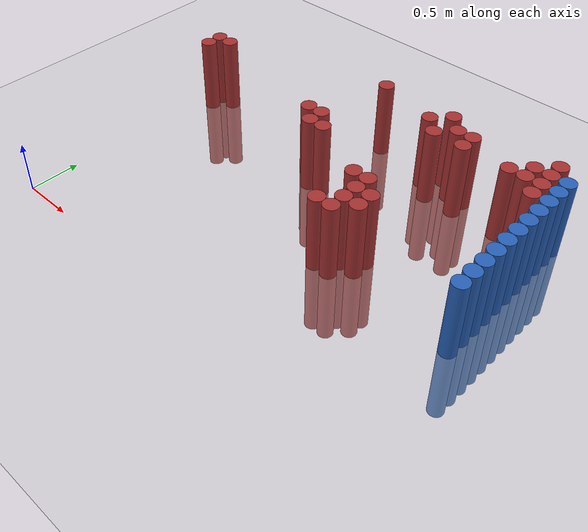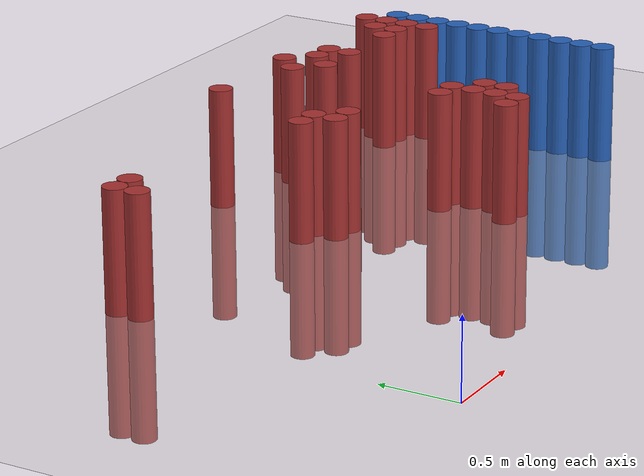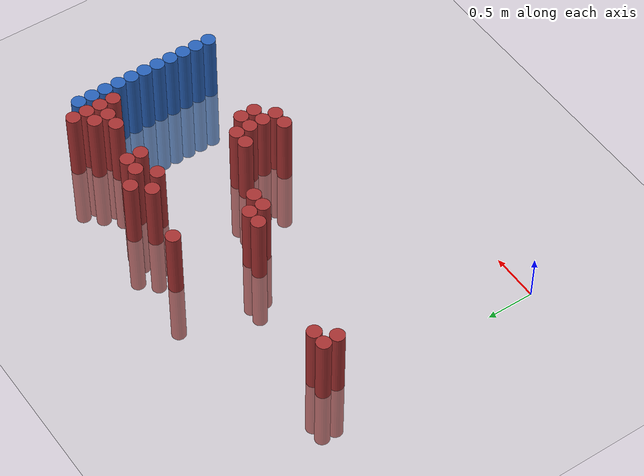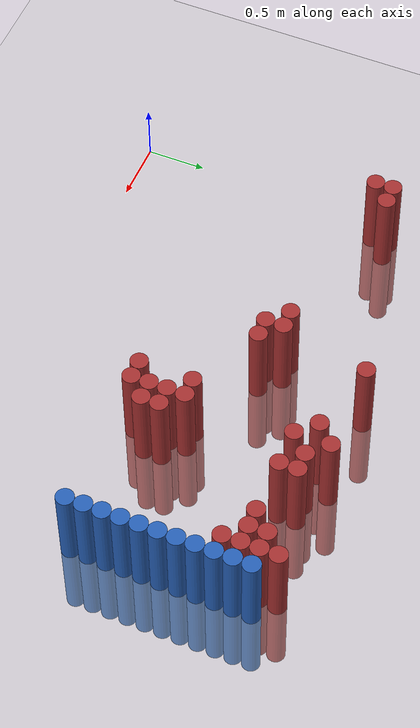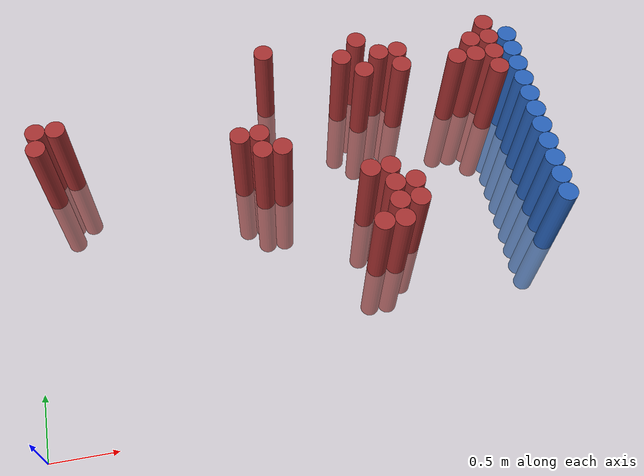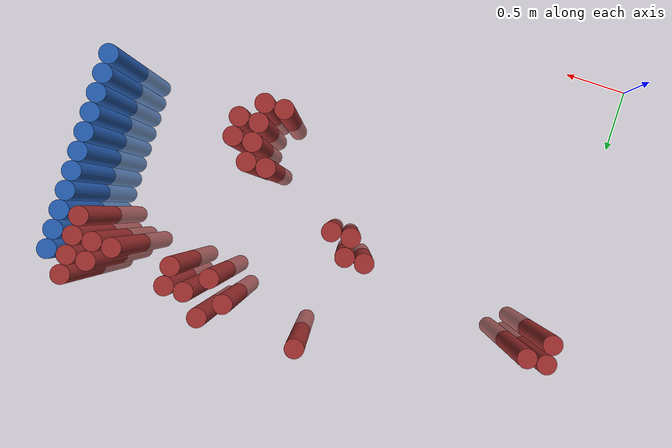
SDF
<sdf version="1.6">
 <world name="default">
  <model name="ground_plane">
   <static>1</static>
   <link name="link">
    <collision name="collision">
     <geometry><plane><normal>0 0 1</normal><size>100 100</size></plane></geometry>
     <surface><friction><ode><mu>100</mu><mu2>50</mu2></ode></friction></surface>
    </collision>
    <visual name="visual">
     <cast_shadows>0</cast_shadows>
     <geometry><plane><normal>0 0 1</normal><size>100 100</size></plane></geometry>
     <material>
      <script><uri>file://media/materials/scripts/gazebo.material</uri><name>Gazebo/Grey</name></script>
     </material>
    </visual>
   </link>
  </model>
  <model name="unit_cylinder_130">
   <static>1</static>
   <pose>3.925000 1.225000 0.000000 0.000000 0.000000 0.000000</pose>
   <link name="link">
    <inertial>
     <mass>1</mass>
     <inertia><ixx>0.145833</ixx><ixy>0</ixy><ixz>0</ixz><iyy>0.145833</iyy><iyz>0</iyz><izz>0.125</izz></inertia>
    </inertial>
    <collision name="collision">
     <geometry><cylinder><radius>0.075000</radius><length>1.5</length></cylinder></geometry>
    </collision>
    <visual name="visual">
     <geometry><cylinder><radius>0.075000</radius><length>1.5</length></cylinder></geometry>
     <material>
      <ambient>0.152000 0.379000 0.720000 1</ambient>
      <diffuse>0.152000 0.379000 0.720000 1</diffuse>
     </material>
     <material>
      <script><name>Gazebo/Grey</name><uri>file://media/materials/scripts/gazebo.material</uri></script>
     </material>
    </visual>
   </link>
  </model>
  <model name="unit_cylinder_132">
   <static>1</static>
   <pose>3.925000 1.375000 0.000000 0.000000 0.000000 0.000000</pose>
   <link name="link">
    <inertial>
     <mass>1</mass>
     <inertia><ixx>0.145833</ixx><ixy>0</ixy><ixz>0</ixz><iyy>0.145833</iyy><iyz>0</iyz><izz>0.125</izz></inertia>
    </inertial>
    <collision name="collision">
     <geometry><cylinder><radius>0.075000</radius><length>1.5</length></cylinder></geometry>
    </collision>
    <visual name="visual">
     <geometry><cylinder><radius>0.075000</radius><length>1.5</length></cylinder></geometry>
     <material>
      <ambient>0.152000 0.379000 0.720000 1</ambient>
      <diffuse>0.152000 0.379000 0.720000 1</diffuse>
     </material>
     <material>
      <script><name>Gazebo/Grey</name><uri>file://media/materials/scripts/gazebo.material</uri></script>
     </material>
    </visual>
   </link>
  </model>
  <model name="unit_cylinder_134">
   <static>1</static>
   <pose>3.925000 1.525000 0.000000 0.000000 0.000000 0.000000</pose>
   <link name="link">
    <inertial>
     <mass>1</mass>
     <inertia><ixx>0.145833</ixx><ixy>0</ixy><ixz>0</ixz><iyy>0.145833</iyy><iyz>0</iyz><izz>0.125</izz></inertia>
    </inertial>
    <collision name="collision">
     <geometry><cylinder><radius>0.075000</radius><length>1.5</length></cylinder></geometry>
    </collision>
    <visual name="visual">
     <geometry><cylinder><radius>0.075000</radius><length>1.5</length></cylinder></geometry>
     <material>
      <ambient>0.152000 0.379000 0.720000 1</ambient>
      <diffuse>0.152000 0.379000 0.720000 1</diffuse>
     </material>
     <material>
      <script><name>Gazebo/Grey</name><uri>file://media/materials/scripts/gazebo.material</uri></script>
     </material>
    </visual>
   </link>
  </model>
  <model name="unit_cylinder_136">
   <static>1</static>
   <pose>3.925000 1.675000 0.000000 0.000000 0.000000 0.000000</pose>
   <link name="link">
    <inertial>
     <mass>1</mass>
     <inertia><ixx>0.145833</ixx><ixy>0</ixy><ixz>0</ixz><iyy>0.145833</iyy><iyz>0</iyz><izz>0.125</izz></inertia>
    </inertial>
    <collision name="collision">
     <geometry><cylinder><radius>0.075000</radius><length>1.5</length></cylinder></geometry>
    </collision>
    <visual name="visual">
     <geometry><cylinder><radius>0.075000</radius><length>1.5</length></cylinder></geometry>
     <material>
      <ambient>0.152000 0.379000 0.720000 1</ambient>
      <diffuse>0.152000 0.379000 0.720000 1</diffuse>
     </material>
     <material>
      <script><name>Gazebo/Grey</name><uri>file://media/materials/scripts/gazebo.material</uri></script>
     </material>
    </visual>
   </link>
  </model>
  <model name="unit_cylinder_138">
   <static>1</static>
   <pose>3.925000 1.825000 0.000000 0.000000 0.000000 0.000000</pose>
   <link name="link">
    <inertial>
     <mass>1</mass>
     <inertia><ixx>0.145833</ixx><ixy>0</ixy><ixz>0</ixz><iyy>0.145833</iyy><iyz>0</iyz><izz>0.125</izz></inertia>
    </inertial>
    <collision name="collision">
     <geometry><cylinder><radius>0.075000</radius><length>1.5</length></cylinder></geometry>
    </collision>
    <visual name="visual">
     <geometry><cylinder><radius>0.075000</radius><length>1.5</length></cylinder></geometry>
     <material>
      <ambient>0.152000 0.379000 0.720000 1</ambient>
      <diffuse>0.152000 0.379000 0.720000 1</diffuse>
     </material>
     <material>
      <script><name>Gazebo/Grey</name><uri>file://media/materials/scripts/gazebo.material</uri></script>
     </material>
    </visual>
   </link>
  </model>
  <model name="unit_cylinder_140">
   <static>1</static>
   <pose>3.925000 1.975000 0.000000 0.000000 0.000000 0.000000</pose>
   <link name="link">
    <inertial>
     <mass>1</mass>
     <inertia><ixx>0.145833</ixx><ixy>0</ixy><ixz>0</ixz><iyy>0.145833</iyy><iyz>0</iyz><izz>0.125</izz></inertia>
    </inertial>
    <collision name="collision">
     <geometry><cylinder><radius>0.075000</radius><length>1.5</length></cylinder></geometry>
    </collision>
    <visual name="visual">
     <geometry><cylinder><radius>0.075000</radius><length>1.5</length></cylinder></geometry>
     <material>
      <ambient>0.152000 0.379000 0.720000 1</ambient>
      <diffuse>0.152000 0.379000 0.720000 1</diffuse>
     </material>
     <material>
      <script><name>Gazebo/Grey</name><uri>file://media/materials/scripts/gazebo.material</uri></script>
     </material>
    </visual>
   </link>
  </model>
  <model name="unit_cylinder_142">
   <static>1</static>
   <pose>3.925000 2.125000 0.000000 0.000000 0.000000 0.000000</pose>
   <link name="link">
    <inertial>
     <mass>1</mass>
     <inertia><ixx>0.145833</ixx><ixy>0</ixy><ixz>0</ixz><iyy>0.145833</iyy><iyz>0</iyz><izz>0.125</izz></inertia>
    </inertial>
    <collision name="collision">
     <geometry><cylinder><radius>0.075000</radius><length>1.5</length></cylinder></geometry>
    </collision>
    <visual name="visual">
     <geometry><cylinder><radius>0.075000</radius><length>1.5</length></cylinder></geometry>
     <material>
      <ambient>0.152000 0.379000 0.720000 1</ambient>
      <diffuse>0.152000 0.379000 0.720000 1</diffuse>
     </material>
     <material>
      <script><name>Gazebo/Grey</name><uri>file://media/materials/scripts/gazebo.material</uri></script>
     </material>
    </visual>
   </link>
  </model>
  <model name="unit_cylinder_144">
   <static>1</static>
   <pose>3.925000 2.275000 0.000000 0.000000 0.000000 0.000000</pose>
   <link name="link">
    <inertial>
     <mass>1</mass>
     <inertia><ixx>0.145833</ixx><ixy>0</ixy><ixz>0</ixz><iyy>0.145833</iyy><iyz>0</iyz><izz>0.125</izz></inertia>
    </inertial>
    <collision name="collision">
     <geometry><cylinder><radius>0.075000</radius><length>1.5</length></cylinder></geometry>
    </collision>
    <visual name="visual">
     <geometry><cylinder><radius>0.075000</radius><length>1.5</length></cylinder></geometry>
     <material>
      <ambient>0.152000 0.379000 0.720000 1</ambient>
      <diffuse>0.152000 0.379000 0.720000 1</diffuse>
     </material>
     <material>
      <script><name>Gazebo/Grey</name><uri>file://media/materials/scripts/gazebo.material</uri></script>
     </material>
    </visual>
   </link>
  </model>
  <model name="unit_cylinder_146">
   <static>1</static>
   <pose>3.925000 2.425000 0.000000 0.000000 0.000000 0.000000</pose>
   <link name="link">
    <inertial>
     <mass>1</mass>
     <inertia><ixx>0.145833</ixx><ixy>0</ixy><ixz>0</ixz><iyy>0.145833</iyy><iyz>0</iyz><izz>0.125</izz></inertia>
    </inertial>
    <collision name="collision">
     <geometry><cylinder><radius>0.075000</radius><length>1.5</length></cylinder></geometry>
    </collision>
    <visual name="visual">
     <geometry><cylinder><radius>0.075000</radius><length>1.5</length></cylinder></geometry>
     <material>
      <ambient>0.152000 0.379000 0.720000 1</ambient>
      <diffuse>0.152000 0.379000 0.720000 1</diffuse>
     </material>
     <material>
      <script><name>Gazebo/Grey</name><uri>file://media/materials/scripts/gazebo.material</uri></script>
     </material>
    </visual>
   </link>
  </model>
  <model name="unit_cylinder_148">
   <static>1</static>
   <pose>3.925000 2.575000 0.000000 0.000000 0.000000 0.000000</pose>
   <link name="link">
    <inertial>
     <mass>1</mass>
     <inertia><ixx>0.145833</ixx><ixy>0</ixy><ixz>0</ixz><iyy>0.145833</iyy><iyz>0</iyz><izz>0.125</izz></inertia>
    </inertial>
    <collision name="collision">
     <geometry><cylinder><radius>0.075000</radius><length>1.5</length></cylinder></geometry>
    </collision>
    <visual name="visual">
     <geometry><cylinder><radius>0.075000</radius><length>1.5</length></cylinder></geometry>
     <material>
      <ambient>0.152000 0.379000 0.720000 1</ambient>
      <diffuse>0.152000 0.379000 0.720000 1</diffuse>
     </material>
     <material>
      <script><name>Gazebo/Grey</name><uri>file://media/materials/scripts/gazebo.material</uri></script>
     </material>
    </visual>
   </link>
  </model>
  <model name="unit_cylinder_389">
   <static>1</static>
   <pose>0.175000 2.125000 0.000000 0.000000 0.000000 0.000000</pose>
   <link name="link">
    <inertial>
     <mass>1</mass>
     <inertia><ixx>0.145833</ixx><ixy>0</ixy><ixz>0</ixz><iyy>0.145833</iyy><iyz>0</iyz><izz>0.125</izz></inertia>
    </inertial>
    <collision name="collision">
     <geometry><cylinder><radius>0.075000</radius><length>1.5</length></cylinder></geometry>
    </collision>
    <visual name="visual">
     <geometry><cylinder><radius>0.075000</radius><length>1.5</length></cylinder></geometry>
     <material>
      <ambient>0.648000 0.192000 0.192000 1</ambient>
      <diffuse>0.648000 0.192000 0.192000 1</diffuse>
     </material>
     <material>
      <script><name>Gazebo/Grey</name><uri>file://media/materials/scripts/gazebo.material</uri></script>
     </material>
    </visual>
   </link>
  </model>
  <model name="unit_cylinder_390">
   <static>1</static>
   <pose>0.175000 2.275000 0.000000 0.000000 0.000000 0.000000</pose>
   <link name="link">
    <inertial>
     <mass>1</mass>
     <inertia><ixx>0.145833</ixx><ixy>0</ixy><ixz>0</ixz><iyy>0.145833</iyy><iyz>0</iyz><izz>0.125</izz></inertia>
    </inertial>
    <collision name="collision">
     <geometry><cylinder><radius>0.075000</radius><length>1.5</length></cylinder></geometry>
    </collision>
    <visual name="visual">
     <geometry><cylinder><radius>0.075000</radius><length>1.5</length></cylinder></geometry>
     <material>
      <ambient>0.648000 0.192000 0.192000 1</ambient>
      <diffuse>0.648000 0.192000 0.192000 1</diffuse>
     </material>
     <material>
      <script><name>Gazebo/Grey</name><uri>file://media/materials/scripts/gazebo.material</uri></script>
     </material>
    </visual>
   </link>
  </model>
  <model name="unit_cylinder_396">
   <static>1</static>
   <pose>0.325000 2.275000 0.000000 0.000000 0.000000 0.000000</pose>
   <link name="link">
    <inertial>
     <mass>1</mass>
     <inertia><ixx>0.145833</ixx><ixy>0</ixy><ixz>0</ixz><iyy>0.145833</iyy><iyz>0</iyz><izz>0.125</izz></inertia>
    </inertial>
    <collision name="collision">
     <geometry><cylinder><radius>0.075000</radius><length>1.5</length></cylinder></geometry>
    </collision>
    <visual name="visual">
     <geometry><cylinder><radius>0.075000</radius><length>1.5</length></cylinder></geometry>
     <material>
      <ambient>0.648000 0.192000 0.192000 1</ambient>
      <diffuse>0.648000 0.192000 0.192000 1</diffuse>
     </material>
     <material>
      <script><name>Gazebo/Grey</name><uri>file://media/materials/scripts/gazebo.material</uri></script>
     </material>
    </visual>
   </link>
  </model>
  <model name="unit_cylinder_413">
   <static>1</static>
   <pose>1.675000 1.975000 0.000000 0.000000 0.000000 0.000000</pose>
   <link name="link">
    <inertial>
     <mass>1</mass>
     <inertia><ixx>0.145833</ixx><ixy>0</ixy><ixz>0</ixz><iyy>0.145833</iyy><iyz>0</iyz><izz>0.125</izz></inertia>
    </inertial>
    <collision name="collision">
     <geometry><cylinder><radius>0.075000</radius><length>1.5</length></cylinder></geometry>
    </collision>
    <visual name="visual">
     <geometry><cylinder><radius>0.075000</radius><length>1.5</length></cylinder></geometry>
     <material>
      <ambient>0.648000 0.192000 0.192000 1</ambient>
      <diffuse>0.648000 0.192000 0.192000 1</diffuse>
     </material>
     <material>
      <script><name>Gazebo/Grey</name><uri>file://media/materials/scripts/gazebo.material</uri></script>
     </material>
    </visual>
   </link>
  </model>
  <model name="unit_cylinder_416">
   <static>1</static>
   <pose>1.825000 1.825000 0.000000 0.000000 0.000000 0.000000</pose>
   <link name="link">
    <inertial>
     <mass>1</mass>
     <inertia><ixx>0.145833</ixx><ixy>0</ixy><ixz>0</ixz><iyy>0.145833</iyy><iyz>0</iyz><izz>0.125</izz></inertia>
    </inertial>
    <collision name="collision">
     <geometry><cylinder><radius>0.075000</radius><length>1.5</length></cylinder></geometry>
    </collision>
    <visual name="visual">
     <geometry><cylinder><radius>0.075000</radius><length>1.5</length></cylinder></geometry>
     <material>
      <ambient>0.648000 0.192000 0.192000 1</ambient>
      <diffuse>0.648000 0.192000 0.192000 1</diffuse>
     </material>
     <material>
      <script><name>Gazebo/Grey</name><uri>file://media/materials/scripts/gazebo.material</uri></script>
     </material>
    </visual>
   </link>
  </model>
  <model name="unit_cylinder_417">
   <static>1</static>
   <pose>1.825000 1.975000 0.000000 0.000000 0.000000 0.000000</pose>
   <link name="link">
    <inertial>
     <mass>1</mass>
     <inertia><ixx>0.145833</ixx><ixy>0</ixy><ixz>0</ixz><iyy>0.145833</iyy><iyz>0</iyz><izz>0.125</izz></inertia>
    </inertial>
    <collision name="collision">
     <geometry><cylinder><radius>0.075000</radius><length>1.5</length></cylinder></geometry>
    </collision>
    <visual name="visual">
     <geometry><cylinder><radius>0.075000</radius><length>1.5</length></cylinder></geometry>
     <material>
      <ambient>0.648000 0.192000 0.192000 1</ambient>
      <diffuse>0.648000 0.192000 0.192000 1</diffuse>
     </material>
     <material>
      <script><name>Gazebo/Grey</name><uri>file://media/materials/scripts/gazebo.material</uri></script>
     </material>
    </visual>
   </link>
  </model>
  <model name="unit_cylinder_421">
   <static>1</static>
   <pose>1.975000 1.825000 0.000000 0.000000 0.000000 0.000000</pose>
   <link name="link">
    <inertial>
     <mass>1</mass>
     <inertia><ixx>0.145833</ixx><ixy>0</ixy><ixz>0</ixz><iyy>0.145833</iyy><iyz>0</iyz><izz>0.125</izz></inertia>
    </inertial>
    <collision name="collision">
     <geometry><cylinder><radius>0.075000</radius><length>1.5</length></cylinder></geometry>
    </collision>
    <visual name="visual">
     <geometry><cylinder><radius>0.075000</radius><length>1.5</length></cylinder></geometry>
     <material>
      <ambient>0.648000 0.192000 0.192000 1</ambient>
      <diffuse>0.648000 0.192000 0.192000 1</diffuse>
     </material>
     <material>
      <script><name>Gazebo/Grey</name><uri>file://media/materials/scripts/gazebo.material</uri></script>
     </material>
    </visual>
   </link>
  </model>
  <model name="unit_cylinder_422">
   <static>1</static>
   <pose>1.975000 2.725000 0.000000 0.000000 0.000000 0.000000</pose>
   <link name="link">
    <inertial>
     <mass>1</mass>
     <inertia><ixx>0.145833</ixx><ixy>0</ixy><ixz>0</ixz><iyy>0.145833</iyy><iyz>0</iyz><izz>0.125</izz></inertia>
    </inertial>
    <collision name="collision">
     <geometry><cylinder><radius>0.075000</radius><length>1.5</length></cylinder></geometry>
    </collision>
    <visual name="visual">
     <geometry><cylinder><radius>0.075000</radius><length>1.5</length></cylinder></geometry>
     <material>
      <ambient>0.648000 0.192000 0.192000 1</ambient>
      <diffuse>0.648000 0.192000 0.192000 1</diffuse>
     </material>
     <material>
      <script><name>Gazebo/Grey</name><uri>file://media/materials/scripts/gazebo.material</uri></script>
     </material>
    </visual>
   </link>
  </model>
  <model name="unit_cylinder_434">
   <static>1</static>
   <pose>2.575000 1.075000 0.000000 0.000000 0.000000 0.000000</pose>
   <link name="link">
    <inertial>
     <mass>1</mass>
     <inertia><ixx>0.145833</ixx><ixy>0</ixy><ixz>0</ixz><iyy>0.145833</iyy><iyz>0</iyz><izz>0.125</izz></inertia>
    </inertial>
    <collision name="collision">
     <geometry><cylinder><radius>0.075000</radius><length>1.5</length></cylinder></geometry>
    </collision>
    <visual name="visual">
     <geometry><cylinder><radius>0.075000</radius><length>1.5</length></cylinder></geometry>
     <material>
      <ambient>0.648000 0.192000 0.192000 1</ambient>
      <diffuse>0.648000 0.192000 0.192000 1</diffuse>
     </material>
     <material>
      <script><name>Gazebo/Grey</name><uri>file://media/materials/scripts/gazebo.material</uri></script>
     </material>
    </visual>
   </link>
  </model>
  <model name="unit_cylinder_435">
   <static>1</static>
   <pose>2.575000 1.525000 0.000000 0.000000 0.000000 0.000000</pose>
   <link name="link">
    <inertial>
     <mass>1</mass>
     <inertia><ixx>0.145833</ixx><ixy>0</ixy><ixz>0</ixz><iyy>0.145833</iyy><iyz>0</iyz><izz>0.125</izz></inertia>
    </inertial>
    <collision name="collision">
     <geometry><cylinder><radius>0.075000</radius><length>1.5</length></cylinder></geometry>
    </collision>
    <visual name="visual">
     <geometry><cylinder><radius>0.075000</radius><length>1.5</length></cylinder></geometry>
     <material>
      <ambient>0.648000 0.192000 0.192000 1</ambient>
      <diffuse>0.648000 0.192000 0.192000 1</diffuse>
     </material>
     <material>
      <script><name>Gazebo/Grey</name><uri>file://media/materials/scripts/gazebo.material</uri></script>
     </material>
    </visual>
   </link>
  </model>
  <model name="unit_cylinder_436">
   <static>1</static>
   <pose>2.575000 2.575000 0.000000 0.000000 0.000000 0.000000</pose>
   <link name="link">
    <inertial>
     <mass>1</mass>
     <inertia><ixx>0.145833</ixx><ixy>0</ixy><ixz>0</ixz><iyy>0.145833</iyy><iyz>0</iyz><izz>0.125</izz></inertia>
    </inertial>
    <collision name="collision">
     <geometry><cylinder><radius>0.075000</radius><length>1.5</length></cylinder></geometry>
    </collision>
    <visual name="visual">
     <geometry><cylinder><radius>0.075000</radius><length>1.5</length></cylinder></geometry>
     <material>
      <ambient>0.648000 0.192000 0.192000 1</ambient>
      <diffuse>0.648000 0.192000 0.192000 1</diffuse>
     </material>
     <material>
      <script><name>Gazebo/Grey</name><uri>file://media/materials/scripts/gazebo.material</uri></script>
     </material>
    </visual>
   </link>
  </model>
  <model name="unit_cylinder_441">
   <static>1</static>
   <pose>2.725000 1.075000 0.000000 0.000000 0.000000 0.000000</pose>
   <link name="link">
    <inertial>
     <mass>1</mass>
     <inertia><ixx>0.145833</ixx><ixy>0</ixy><ixz>0</ixz><iyy>0.145833</iyy><iyz>0</iyz><izz>0.125</izz></inertia>
    </inertial>
    <collision name="collision">
     <geometry><cylinder><radius>0.075000</radius><length>1.5</length></cylinder></geometry>
    </collision>
    <visual name="visual">
     <geometry><cylinder><radius>0.075000</radius><length>1.5</length></cylinder></geometry>
     <material>
      <ambient>0.648000 0.192000 0.192000 1</ambient>
      <diffuse>0.648000 0.192000 0.192000 1</diffuse>
     </material>
     <material>
      <script><name>Gazebo/Grey</name><uri>file://media/materials/scripts/gazebo.material</uri></script>
     </material>
    </visual>
   </link>
  </model>
  <model name="unit_cylinder_442">
   <static>1</static>
   <pose>2.725000 1.225000 0.000000 0.000000 0.000000 0.000000</pose>
   <link name="link">
    <inertial>
     <mass>1</mass>
     <inertia><ixx>0.145833</ixx><ixy>0</ixy><ixz>0</ixz><iyy>0.145833</iyy><iyz>0</iyz><izz>0.125</izz></inertia>
    </inertial>
    <collision name="collision">
     <geometry><cylinder><radius>0.075000</radius><length>1.5</length></cylinder></geometry>
    </collision>
    <visual name="visual">
     <geometry><cylinder><radius>0.075000</radius><length>1.5</length></cylinder></geometry>
     <material>
      <ambient>0.648000 0.192000 0.192000 1</ambient>
      <diffuse>0.648000 0.192000 0.192000 1</diffuse>
     </material>
     <material>
      <script><name>Gazebo/Grey</name><uri>file://media/materials/scripts/gazebo.material</uri></script>
     </material>
    </visual>
   </link>
  </model>
  <model name="unit_cylinder_443">
   <static>1</static>
   <pose>2.725000 1.375000 0.000000 0.000000 0.000000 0.000000</pose>
   <link name="link">
    <inertial>
     <mass>1</mass>
     <inertia><ixx>0.145833</ixx><ixy>0</ixy><ixz>0</ixz><iyy>0.145833</iyy><iyz>0</iyz><izz>0.125</izz></inertia>
    </inertial>
    <collision name="collision">
     <geometry><cylinder><radius>0.075000</radius><length>1.5</length></cylinder></geometry>
    </collision>
    <visual name="visual">
     <geometry><cylinder><radius>0.075000</radius><length>1.5</length></cylinder></geometry>
     <material>
      <ambient>0.648000 0.192000 0.192000 1</ambient>
      <diffuse>0.648000 0.192000 0.192000 1</diffuse>
     </material>
     <material>
      <script><name>Gazebo/Grey</name><uri>file://media/materials/scripts/gazebo.material</uri></script>
     </material>
    </visual>
   </link>
  </model>
  <model name="unit_cylinder_444">
   <static>1</static>
   <pose>2.725000 1.525000 0.000000 0.000000 0.000000 0.000000</pose>
   <link name="link">
    <inertial>
     <mass>1</mass>
     <inertia><ixx>0.145833</ixx><ixy>0</ixy><ixz>0</ixz><iyy>0.145833</iyy><iyz>0</iyz><izz>0.125</izz></inertia>
    </inertial>
    <collision name="collision">
     <geometry><cylinder><radius>0.075000</radius><length>1.5</length></cylinder></geometry>
    </collision>
    <visual name="visual">
     <geometry><cylinder><radius>0.075000</radius><length>1.5</length></cylinder></geometry>
     <material>
      <ambient>0.648000 0.192000 0.192000 1</ambient>
      <diffuse>0.648000 0.192000 0.192000 1</diffuse>
     </material>
     <material>
      <script><name>Gazebo/Grey</name><uri>file://media/materials/scripts/gazebo.material</uri></script>
     </material>
    </visual>
   </link>
  </model>
  <model name="unit_cylinder_445">
   <static>1</static>
   <pose>2.725000 2.425000 0.000000 0.000000 0.000000 0.000000</pose>
   <link name="link">
    <inertial>
     <mass>1</mass>
     <inertia><ixx>0.145833</ixx><ixy>0</ixy><ixz>0</ixz><iyy>0.145833</iyy><iyz>0</iyz><izz>0.125</izz></inertia>
    </inertial>
    <collision name="collision">
     <geometry><cylinder><radius>0.075000</radius><length>1.5</length></cylinder></geometry>
    </collision>
    <visual name="visual">
     <geometry><cylinder><radius>0.075000</radius><length>1.5</length></cylinder></geometry>
     <material>
      <ambient>0.648000 0.192000 0.192000 1</ambient>
      <diffuse>0.648000 0.192000 0.192000 1</diffuse>
     </material>
     <material>
      <script><name>Gazebo/Grey</name><uri>file://media/materials/scripts/gazebo.material</uri></script>
     </material>
    </visual>
   </link>
  </model>
  <model name="unit_cylinder_446">
   <static>1</static>
   <pose>2.725000 2.725000 0.000000 0.000000 0.000000 0.000000</pose>
   <link name="link">
    <inertial>
     <mass>1</mass>
     <inertia><ixx>0.145833</ixx><ixy>0</ixy><ixz>0</ixz><iyy>0.145833</iyy><iyz>0</iyz><izz>0.125</izz></inertia>
    </inertial>
    <collision name="collision">
     <geometry><cylinder><radius>0.075000</radius><length>1.5</length></cylinder></geometry>
    </collision>
    <visual name="visual">
     <geometry><cylinder><radius>0.075000</radius><length>1.5</length></cylinder></geometry>
     <material>
      <ambient>0.648000 0.192000 0.192000 1</ambient>
      <diffuse>0.648000 0.192000 0.192000 1</diffuse>
     </material>
     <material>
      <script><name>Gazebo/Grey</name><uri>file://media/materials/scripts/gazebo.material</uri></script>
     </material>
    </visual>
   </link>
  </model>
  <model name="unit_cylinder_451">
   <static>1</static>
   <pose>2.875000 1.225000 0.000000 0.000000 0.000000 0.000000</pose>
   <link name="link">
    <inertial>
     <mass>1</mass>
     <inertia><ixx>0.145833</ixx><ixy>0</ixy><ixz>0</ixz><iyy>0.145833</iyy><iyz>0</iyz><izz>0.125</izz></inertia>
    </inertial>
    <collision name="collision">
     <geometry><cylinder><radius>0.075000</radius><length>1.5</length></cylinder></geometry>
    </collision>
    <visual name="visual">
     <geometry><cylinder><radius>0.075000</radius><length>1.5</length></cylinder></geometry>
     <material>
      <ambient>0.648000 0.192000 0.192000 1</ambient>
      <diffuse>0.648000 0.192000 0.192000 1</diffuse>
     </material>
     <material>
      <script><name>Gazebo/Grey</name><uri>file://media/materials/scripts/gazebo.material</uri></script>
     </material>
    </visual>
   </link>
  </model>
  <model name="unit_cylinder_452">
   <static>1</static>
   <pose>2.875000 1.375000 0.000000 0.000000 0.000000 0.000000</pose>
   <link name="link">
    <inertial>
     <mass>1</mass>
     <inertia><ixx>0.145833</ixx><ixy>0</ixy><ixz>0</ixz><iyy>0.145833</iyy><iyz>0</iyz><izz>0.125</izz></inertia>
    </inertial>
    <collision name="collision">
     <geometry><cylinder><radius>0.075000</radius><length>1.5</length></cylinder></geometry>
    </collision>
    <visual name="visual">
     <geometry><cylinder><radius>0.075000</radius><length>1.5</length></cylinder></geometry>
     <material>
      <ambient>0.648000 0.192000 0.192000 1</ambient>
      <diffuse>0.648000 0.192000 0.192000 1</diffuse>
     </material>
     <material>
      <script><name>Gazebo/Grey</name><uri>file://media/materials/scripts/gazebo.material</uri></script>
     </material>
    </visual>
   </link>
  </model>
  <model name="unit_cylinder_453">
   <static>1</static>
   <pose>2.875000 2.575000 0.000000 0.000000 0.000000 0.000000</pose>
   <link name="link">
    <inertial>
     <mass>1</mass>
     <inertia><ixx>0.145833</ixx><ixy>0</ixy><ixz>0</ixz><iyy>0.145833</iyy><iyz>0</iyz><izz>0.125</izz></inertia>
    </inertial>
    <collision name="collision">
     <geometry><cylinder><radius>0.075000</radius><length>1.5</length></cylinder></geometry>
    </collision>
    <visual name="visual">
     <geometry><cylinder><radius>0.075000</radius><length>1.5</length></cylinder></geometry>
     <material>
      <ambient>0.648000 0.192000 0.192000 1</ambient>
      <diffuse>0.648000 0.192000 0.192000 1</diffuse>
     </material>
     <material>
      <script><name>Gazebo/Grey</name><uri>file://media/materials/scripts/gazebo.material</uri></script>
     </material>
    </visual>
   </link>
  </model>
  <model name="unit_cylinder_458">
   <static>1</static>
   <pose>3.025000 2.425000 0.000000 0.000000 0.000000 0.000000</pose>
   <link name="link">
    <inertial>
     <mass>1</mass>
     <inertia><ixx>0.145833</ixx><ixy>0</ixy><ixz>0</ixz><iyy>0.145833</iyy><iyz>0</iyz><izz>0.125</izz></inertia>
    </inertial>
    <collision name="collision">
     <geometry><cylinder><radius>0.075000</radius><length>1.5</length></cylinder></geometry>
    </collision>
    <visual name="visual">
     <geometry><cylinder><radius>0.075000</radius><length>1.5</length></cylinder></geometry>
     <material>
      <ambient>0.648000 0.192000 0.192000 1</ambient>
      <diffuse>0.648000 0.192000 0.192000 1</diffuse>
     </material>
     <material>
      <script><name>Gazebo/Grey</name><uri>file://media/materials/scripts/gazebo.material</uri></script>
     </material>
    </visual>
   </link>
  </model>
  <model name="unit_cylinder_459">
   <static>1</static>
   <pose>3.025000 2.575000 0.000000 0.000000 0.000000 0.000000</pose>
   <link name="link">
    <inertial>
     <mass>1</mass>
     <inertia><ixx>0.145833</ixx><ixy>0</ixy><ixz>0</ixz><iyy>0.145833</iyy><iyz>0</iyz><izz>0.125</izz></inertia>
    </inertial>
    <collision name="collision">
     <geometry><cylinder><radius>0.075000</radius><length>1.5</length></cylinder></geometry>
    </collision>
    <visual name="visual">
     <geometry><cylinder><radius>0.075000</radius><length>1.5</length></cylinder></geometry>
     <material>
      <ambient>0.648000 0.192000 0.192000 1</ambient>
      <diffuse>0.648000 0.192000 0.192000 1</diffuse>
     </material>
     <material>
      <script><name>Gazebo/Grey</name><uri>file://media/materials/scripts/gazebo.material</uri></script>
     </material>
    </visual>
   </link>
  </model>
  <model name="unit_cylinder_469">
   <static>1</static>
   <pose>3.475000 2.425000 0.000000 0.000000 0.000000 0.000000</pose>
   <link name="link">
    <inertial>
     <mass>1</mass>
     <inertia><ixx>0.145833</ixx><ixy>0</ixy><ixz>0</ixz><iyy>0.145833</iyy><iyz>0</iyz><izz>0.125</izz></inertia>
    </inertial>
    <collision name="collision">
     <geometry><cylinder><radius>0.075000</radius><length>1.5</length></cylinder></geometry>
    </collision>
    <visual name="visual">
     <geometry><cylinder><radius>0.075000</radius><length>1.5</length></cylinder></geometry>
     <material>
      <ambient>0.648000 0.192000 0.192000 1</ambient>
      <diffuse>0.648000 0.192000 0.192000 1</diffuse>
     </material>
     <material>
      <script><name>Gazebo/Grey</name><uri>file://media/materials/scripts/gazebo.material</uri></script>
     </material>
    </visual>
   </link>
  </model>
  <model name="unit_cylinder_475">
   <static>1</static>
   <pose>3.625000 2.425000 0.000000 0.000000 0.000000 0.000000</pose>
   <link name="link">
    <inertial>
     <mass>1</mass>
     <inertia><ixx>0.145833</ixx><ixy>0</ixy><ixz>0</ixz><iyy>0.145833</iyy><iyz>0</iyz><izz>0.125</izz></inertia>
    </inertial>
    <collision name="collision">
     <geometry><cylinder><radius>0.075000</radius><length>1.5</length></cylinder></geometry>
    </collision>
    <visual name="visual">
     <geometry><cylinder><radius>0.075000</radius><length>1.5</length></cylinder></geometry>
     <material>
      <ambient>0.648000 0.192000 0.192000 1</ambient>
      <diffuse>0.648000 0.192000 0.192000 1</diffuse>
     </material>
     <material>
      <script><name>Gazebo/Grey</name><uri>file://media/materials/scripts/gazebo.material</uri></script>
     </material>
    </visual>
   </link>
  </model>
  <model name="unit_cylinder_476">
   <static>1</static>
   <pose>3.625000 2.575000 0.000000 0.000000 0.000000 0.000000</pose>
   <link name="link">
    <inertial>
     <mass>1</mass>
     <inertia><ixx>0.145833</ixx><ixy>0</ixy><ixz>0</ixz><iyy>0.145833</iyy><iyz>0</iyz><izz>0.125</izz></inertia>
    </inertial>
    <collision name="collision">
     <geometry><cylinder><radius>0.075000</radius><length>1.5</length></cylinder></geometry>
    </collision>
    <visual name="visual">
     <geometry><cylinder><radius>0.075000</radius><length>1.5</length></cylinder></geometry>
     <material>
      <ambient>0.648000 0.192000 0.192000 1</ambient>
      <diffuse>0.648000 0.192000 0.192000 1</diffuse>
     </material>
     <material>
      <script><name>Gazebo/Grey</name><uri>file://media/materials/scripts/gazebo.material</uri></script>
     </material>
    </visual>
   </link>
  </model>
  <model name="unit_cylinder_487">
   <static>1</static>
   <pose>3.775000 2.275000 0.000000 0.000000 0.000000 0.000000</pose>
   <link name="link">
    <inertial>
     <mass>1</mass>
     <inertia><ixx>0.145833</ixx><ixy>0</ixy><ixz>0</ixz><iyy>0.145833</iyy><iyz>0</iyz><izz>0.125</izz></inertia>
    </inertial>
    <collision name="collision">
     <geometry><cylinder><radius>0.075000</radius><length>1.5</length></cylinder></geometry>
    </collision>
    <visual name="visual">
     <geometry><cylinder><radius>0.075000</radius><length>1.5</length></cylinder></geometry>
     <material>
      <ambient>0.648000 0.192000 0.192000 1</ambient>
      <diffuse>0.648000 0.192000 0.192000 1</diffuse>
     </material>
     <material>
      <script><name>Gazebo/Grey</name><uri>file://media/materials/scripts/gazebo.material</uri></script>
     </material>
    </visual>
   </link>
  </model>
  <model name="unit_cylinder_488">
   <static>1</static>
   <pose>3.775000 2.425000 0.000000 0.000000 0.000000 0.000000</pose>
   <link name="link">
    <inertial>
     <mass>1</mass>
     <inertia><ixx>0.145833</ixx><ixy>0</ixy><ixz>0</ixz><iyy>0.145833</iyy><iyz>0</iyz><izz>0.125</izz></inertia>
    </inertial>
    <collision name="collision">
     <geometry><cylinder><radius>0.075000</radius><length>1.5</length></cylinder></geometry>
    </collision>
    <visual name="visual">
     <geometry><cylinder><radius>0.075000</radius><length>1.5</length></cylinder></geometry>
     <material>
      <ambient>0.648000 0.192000 0.192000 1</ambient>
      <diffuse>0.648000 0.192000 0.192000 1</diffuse>
     </material>
     <material>
      <script><name>Gazebo/Grey</name><uri>file://media/materials/scripts/gazebo.material</uri></script>
     </material>
    </visual>
   </link>
  </model>
  <model name="unit_cylinder_489">
   <static>1</static>
   <pose>3.775000 2.575000 0.000000 0.000000 0.000000 0.000000</pose>
   <link name="link">
    <inertial>
     <mass>1</mass>
     <inertia><ixx>0.145833</ixx><ixy>0</ixy><ixz>0</ixz><iyy>0.145833</iyy><iyz>0</iyz><izz>0.125</izz></inertia>
    </inertial>
    <collision name="collision">
     <geometry><cylinder><radius>0.075000</radius><length>1.5</length></cylinder></geometry>
    </collision>
    <visual name="visual">
     <geometry><cylinder><radius>0.075000</radius><length>1.5</length></cylinder></geometry>
     <material>
      <ambient>0.648000 0.192000 0.192000 1</ambient>
      <diffuse>0.648000 0.192000 0.192000 1</diffuse>
     </material>
     <material>
      <script><name>Gazebo/Grey</name><uri>file://media/materials/scripts/gazebo.material</uri></script>
     </material>
    </visual>
   </link>
  </model>
  <model name="unit_cylinder_490">
   <static>1</static>
   <pose>3.775000 2.725000 0.000000 0.000000 0.000000 0.000000</pose>
   <link name="link">
    <inertial>
     <mass>1</mass>
     <inertia><ixx>0.145833</ixx><ixy>0</ixy><ixz>0</ixz><iyy>0.145833</iyy><iyz>0</iyz><izz>0.125</izz></inertia>
    </inertial>
    <collision name="collision">
     <geometry><cylinder><radius>0.075000</radius><length>1.5</length></cylinder></geometry>
    </collision>
    <visual name="visual">
     <geometry><cylinder><radius>0.075000</radius><length>1.5</length></cylinder></geometry>
     <material>
      <ambient>0.648000 0.192000 0.192000 1</ambient>
      <diffuse>0.648000 0.192000 0.192000 1</diffuse>
     </material>
     <material>
      <script><name>Gazebo/Grey</name><uri>file://media/materials/scripts/gazebo.material</uri></script>
     </material>
    </visual>
   </link>
  </model>
  <model name="unit_cylinder_516">
   <static>1</static>
   <pose>3.925000 1.075000 0.000000 0.000000 0.000000 0.000000</pose>
   <link name="link">
    <inertial>
     <mass>1</mass>
     <inertia><ixx>0.145833</ixx><ixy>0</ixy><ixz>0</ixz><iyy>0.145833</iyy><iyz>0</iyz><izz>0.125</izz></inertia>
    </inertial>
    <collision name="collision">
     <geometry><cylinder><radius>0.075000</radius><length>1.5</length></cylinder></geometry>
    </collision>
    <visual name="visual">
     <geometry><cylinder><radius>0.075000</radius><length>1.5</length></cylinder></geometry>
     <material>
      <ambient>0.152000 0.379000 0.720000 1</ambient>
      <diffuse>0.152000 0.379000 0.720000 1</diffuse>
     </material>
     <material>
      <script><name>Gazebo/Grey</name><uri>file://media/materials/scripts/gazebo.material</uri></script>
     </material>
    </visual>
   </link>
  </model>
  <model name="unit_cylinder_517">
   <static>1</static>
   <pose>3.925000 1.225000 0.000000 0.000000 0.000000 0.000000</pose>
   <link name="link">
    <inertial>
     <mass>1</mass>
     <inertia><ixx>0.145833</ixx><ixy>0</ixy><ixz>0</ixz><iyy>0.145833</iyy><iyz>0</iyz><izz>0.125</izz></inertia>
    </inertial>
    <collision name="collision">
     <geometry><cylinder><radius>0.075000</radius><length>1.5</length></cylinder></geometry>
    </collision>
    <visual name="visual">
     <geometry><cylinder><radius>0.075000</radius><length>1.5</length></cylinder></geometry>
     <material>
      <ambient>0.152000 0.379000 0.720000 1</ambient>
      <diffuse>0.152000 0.379000 0.720000 1</diffuse>
     </material>
     <material>
      <script><name>Gazebo/Grey</name><uri>file://media/materials/scripts/gazebo.material</uri></script>
     </material>
    </visual>
   </link>
  </model>
  <model name="unit_cylinder_518">
   <static>1</static>
   <pose>3.925000 1.375000 0.000000 0.000000 0.000000 0.000000</pose>
   <link name="link">
    <inertial>
     <mass>1</mass>
     <inertia><ixx>0.145833</ixx><ixy>0</ixy><ixz>0</ixz><iyy>0.145833</iyy><iyz>0</iyz><izz>0.125</izz></inertia>
    </inertial>
    <collision name="collision">
     <geometry><cylinder><radius>0.075000</radius><length>1.5</length></cylinder></geometry>
    </collision>
    <visual name="visual">
     <geometry><cylinder><radius>0.075000</radius><length>1.5</length></cylinder></geometry>
     <material>
      <ambient>0.152000 0.379000 0.720000 1</ambient>
      <diffuse>0.152000 0.379000 0.720000 1</diffuse>
     </material>
     <material>
      <script><name>Gazebo/Grey</name><uri>file://media/materials/scripts/gazebo.material</uri></script>
     </material>
    </visual>
   </link>
  </model>
  <model name="unit_cylinder_519">
   <static>1</static>
   <pose>3.925000 1.525000 0.000000 0.000000 0.000000 0.000000</pose>
   <link name="link">
    <inertial>
     <mass>1</mass>
     <inertia><ixx>0.145833</ixx><ixy>0</ixy><ixz>0</ixz><iyy>0.145833</iyy><iyz>0</iyz><izz>0.125</izz></inertia>
    </inertial>
    <collision name="collision">
     <geometry><cylinder><radius>0.075000</radius><length>1.5</length></cylinder></geometry>
    </collision>
    <visual name="visual">
     <geometry><cylinder><radius>0.075000</radius><length>1.5</length></cylinder></geometry>
     <material>
      <ambient>0.152000 0.379000 0.720000 1</ambient>
      <diffuse>0.152000 0.379000 0.720000 1</diffuse>
     </material>
     <material>
      <script><name>Gazebo/Grey</name><uri>file://media/materials/scripts/gazebo.material</uri></script>
     </material>
    </visual>
   </link>
  </model>
  <model name="unit_cylinder_520">
   <static>1</static>
   <pose>3.925000 1.675000 0.000000 0.000000 0.000000 0.000000</pose>
   <link name="link">
    <inertial>
     <mass>1</mass>
     <inertia><ixx>0.145833</ixx><ixy>0</ixy><ixz>0</ixz><iyy>0.145833</iyy><iyz>0</iyz><izz>0.125</izz></inertia>
    </inertial>
    <collision name="collision">
     <geometry><cylinder><radius>0.075000</radius><length>1.5</length></cylinder></geometry>
    </collision>
    <visual name="visual">
     <geometry><cylinder><radius>0.075000</radius><length>1.5</length></cylinder></geometry>
     <material>
      <ambient>0.152000 0.379000 0.720000 1</ambient>
      <diffuse>0.152000 0.379000 0.720000 1</diffuse>
     </material>
     <material>
      <script><name>Gazebo/Grey</name><uri>file://media/materials/scripts/gazebo.material</uri></script>
     </material>
    </visual>
   </link>
  </model>
  <model name="unit_cylinder_521">
   <static>1</static>
   <pose>3.925000 1.825000 0.000000 0.000000 0.000000 0.000000</pose>
   <link name="link">
    <inertial>
     <mass>1</mass>
     <inertia><ixx>0.145833</ixx><ixy>0</ixy><ixz>0</ixz><iyy>0.145833</iyy><iyz>0</iyz><izz>0.125</izz></inertia>
    </inertial>
    <collision name="collision">
     <geometry><cylinder><radius>0.075000</radius><length>1.5</length></cylinder></geometry>
    </collision>
    <visual name="visual">
     <geometry><cylinder><radius>0.075000</radius><length>1.5</length></cylinder></geometry>
     <material>
      <ambient>0.152000 0.379000 0.720000 1</ambient>
      <diffuse>0.152000 0.379000 0.720000 1</diffuse>
     </material>
     <material>
      <script><name>Gazebo/Grey</name><uri>file://media/materials/scripts/gazebo.material</uri></script>
     </material>
    </visual>
   </link>
  </model>
  <model name="unit_cylinder_522">
   <static>1</static>
   <pose>3.925000 1.975000 0.000000 0.000000 0.000000 0.000000</pose>
   <link name="link">
    <inertial>
     <mass>1</mass>
     <inertia><ixx>0.145833</ixx><ixy>0</ixy><ixz>0</ixz><iyy>0.145833</iyy><iyz>0</iyz><izz>0.125</izz></inertia>
    </inertial>
    <collision name="collision">
     <geometry><cylinder><radius>0.075000</radius><length>1.5</length></cylinder></geometry>
    </collision>
    <visual name="visual">
     <geometry><cylinder><radius>0.075000</radius><length>1.5</length></cylinder></geometry>
     <material>
      <ambient>0.152000 0.379000 0.720000 1</ambient>
      <diffuse>0.152000 0.379000 0.720000 1</diffuse>
     </material>
     <material>
      <script><name>Gazebo/Grey</name><uri>file://media/materials/scripts/gazebo.material</uri></script>
     </material>
    </visual>
   </link>
  </model>
  <model name="unit_cylinder_523">
   <static>1</static>
   <pose>3.925000 2.125000 0.000000 0.000000 0.000000 0.000000</pose>
   <link name="link">
    <inertial>
     <mass>1</mass>
     <inertia><ixx>0.145833</ixx><ixy>0</ixy><ixz>0</ixz><iyy>0.145833</iyy><iyz>0</iyz><izz>0.125</izz></inertia>
    </inertial>
    <collision name="collision">
     <geometry><cylinder><radius>0.075000</radius><length>1.5</length></cylinder></geometry>
    </collision>
    <visual name="visual">
     <geometry><cylinder><radius>0.075000</radius><length>1.5</length></cylinder></geometry>
     <material>
      <ambient>0.152000 0.379000 0.720000 1</ambient>
      <diffuse>0.152000 0.379000 0.720000 1</diffuse>
     </material>
     <material>
      <script><name>Gazebo/Grey</name><uri>file://media/materials/scripts/gazebo.material</uri></script>
     </material>
    </visual>
   </link>
  </model>
  <model name="unit_cylinder_524">
   <static>1</static>
   <pose>3.925000 2.275000 0.000000 0.000000 0.000000 0.000000</pose>
   <link name="link">
    <inertial>
     <mass>1</mass>
     <inertia><ixx>0.145833</ixx><ixy>0</ixy><ixz>0</ixz><iyy>0.145833</iyy><iyz>0</iyz><izz>0.125</izz></inertia>
    </inertial>
    <collision name="collision">
     <geometry><cylinder><radius>0.075000</radius><length>1.5</length></cylinder></geometry>
    </collision>
    <visual name="visual">
     <geometry><cylinder><radius>0.075000</radius><length>1.5</length></cylinder></geometry>
     <material>
      <ambient>0.152000 0.379000 0.720000 1</ambient>
      <diffuse>0.152000 0.379000 0.720000 1</diffuse>
     </material>
     <material>
      <script><name>Gazebo/Grey</name><uri>file://media/materials/scripts/gazebo.material</uri></script>
     </material>
    </visual>
   </link>
  </model>
  <model name="unit_cylinder_525">
   <static>1</static>
   <pose>3.925000 2.425000 0.000000 0.000000 0.000000 0.000000</pose>
   <link name="link">
    <inertial>
     <mass>1</mass>
     <inertia><ixx>0.145833</ixx><ixy>0</ixy><ixz>0</ixz><iyy>0.145833</iyy><iyz>0</iyz><izz>0.125</izz></inertia>
    </inertial>
    <collision name="collision">
     <geometry><cylinder><radius>0.075000</radius><length>1.5</length></cylinder></geometry>
    </collision>
    <visual name="visual">
     <geometry><cylinder><radius>0.075000</radius><length>1.5</length></cylinder></geometry>
     <material>
      <ambient>0.152000 0.379000 0.720000 1</ambient>
      <diffuse>0.152000 0.379000 0.720000 1</diffuse>
     </material>
     <material>
      <script><name>Gazebo/Grey</name><uri>file://media/materials/scripts/gazebo.material</uri></script>
     </material>
    </visual>
   </link>
  </model>
  <model name="unit_cylinder_526">
   <static>1</static>
   <pose>3.925000 2.575000 0.000000 0.000000 0.000000 0.000000</pose>
   <link name="link">
    <inertial>
     <mass>1</mass>
     <inertia><ixx>0.145833</ixx><ixy>0</ixy><ixz>0</ixz><iyy>0.145833</iyy><iyz>0</iyz><izz>0.125</izz></inertia>
    </inertial>
    <collision name="collision">
     <geometry><cylinder><radius>0.075000</radius><length>1.5</length></cylinder></geometry>
    </collision>
    <visual name="visual">
     <geometry><cylinder><radius>0.075000</radius><length>1.5</length></cylinder></geometry>
     <material>
      <ambient>0.152000 0.379000 0.720000 1</ambient>
      <diffuse>0.152000 0.379000 0.720000 1</diffuse>
     </material>
     <material>
      <script><name>Gazebo/Grey</name><uri>file://media/materials/scripts/gazebo.material</uri></script>
     </material>
    </visual>
   </link>
  </model>
 </world>
</sdf>
